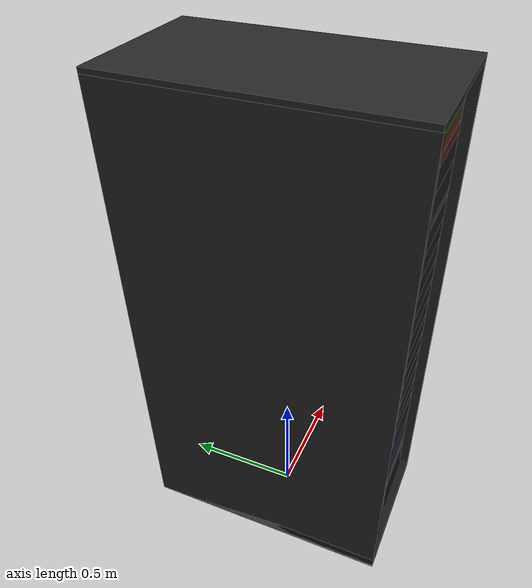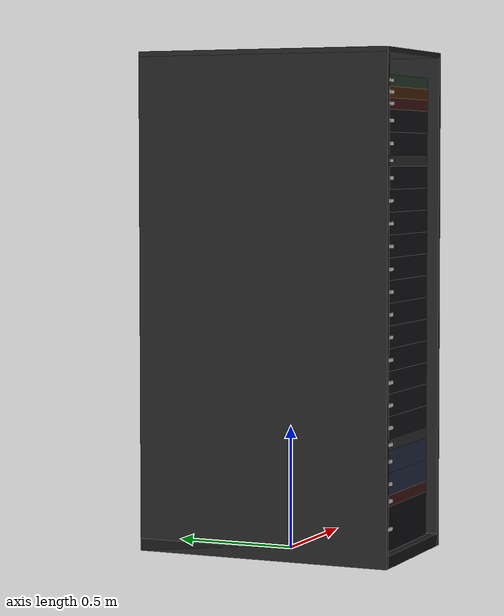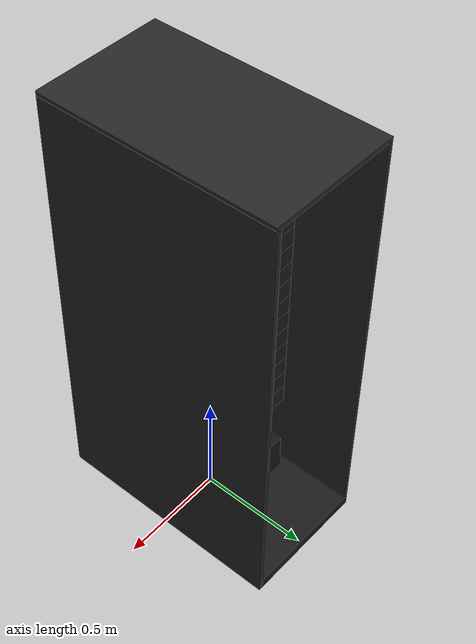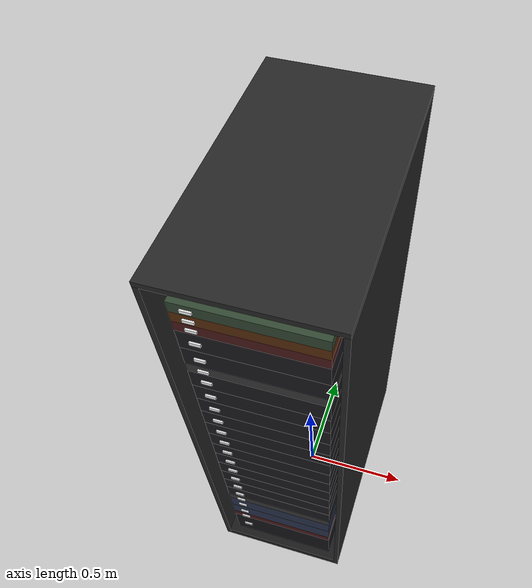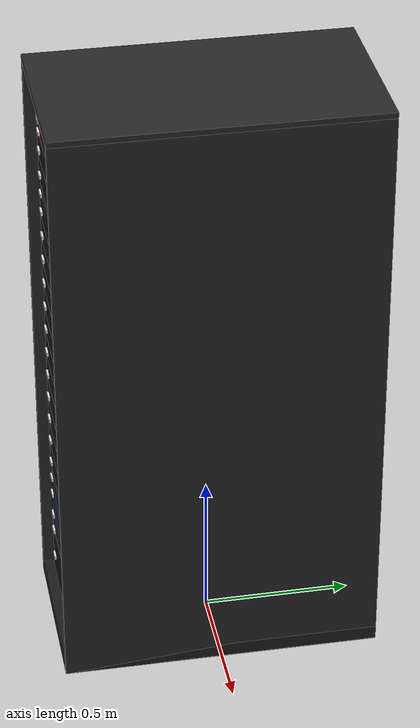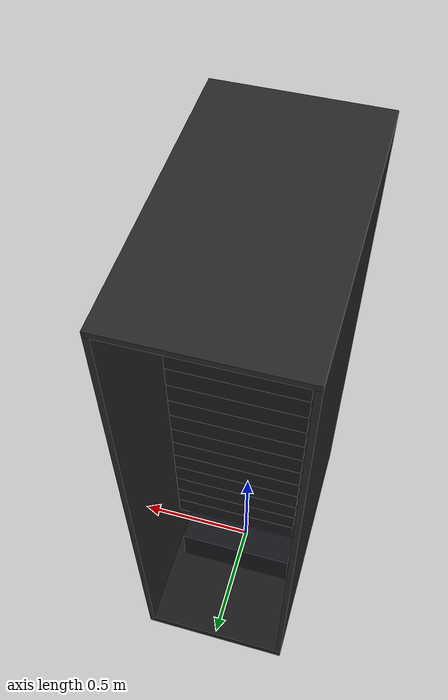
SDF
<?xml version="1.0"?>
<sdf version="1.9">
  <model name="server_rack_6">
    <static>true</static>

    <!-- ===================== FRAME ===================== -->

    <link name="frame_side_left">
      <pose>-0.29 0 1.0 0 0 0</pose>
      <collision name="collision">
        <geometry><box><size>0.02 1.07 2.0</size></box></geometry>
      </collision>
      <visual name="visual">
        <geometry><box><size>0.02 1.07 2.0</size></box></geometry>
        <material>
          <ambient>0.15 0.15 0.15 1</ambient>
          <diffuse>0.15 0.15 0.15 1</diffuse>
        </material>
      </visual>
    </link>

    <link name="frame_side_right">
      <pose>0.29 0 1.0 0 0 0</pose>
      <collision name="collision">
        <geometry><box><size>0.02 1.07 2.0</size></box></geometry>
      </collision>
      <visual name="visual">
        <geometry><box><size>0.02 1.07 2.0</size></box></geometry>
        <material>
          <ambient>0.15 0.15 0.15 1</ambient>
          <diffuse>0.15 0.15 0.15 1</diffuse>
        </material>
      </visual>
    </link>

    <link name="frame_top">
      <pose>0 0 2.01 0 0 0</pose>
      <collision name="collision">
        <geometry><box><size>0.60 1.07 0.02</size></box></geometry>
      </collision>
      <visual name="visual">
        <geometry><box><size>0.60 1.07 0.02</size></box></geometry>
        <material>
          <ambient>0.15 0.15 0.15 1</ambient>
          <diffuse>0.15 0.15 0.15 1</diffuse>
        </material>
      </visual>
    </link>

    <link name="frame_plinth">
      <pose>0 0 0.025 0 0 0</pose>
      <collision name="collision">
        <geometry><box><size>0.60 1.07 0.05</size></box></geometry>
      </collision>
      <visual name="visual">
        <geometry><box><size>0.60 1.07 0.05</size></box></geometry>
        <material>
          <ambient>0.10 0.10 0.10 1</ambient>
          <diffuse>0.10 0.10 0.10 1</diffuse>
        </material>
      </visual>
    </link>

    <!-- ===================== EQUIPMENT ===================== -->

    <!-- 4RU UPS, U1-U4 -->
    <link name="ups">
      <pose>0 -0.15 0.1389 0 0 0</pose>
      <collision name="collision">
        <geometry><box><size>0.483 0.70 0.1778</size></box></geometry>
      </collision>
      <visual name="visual">
        <geometry><box><size>0.483 0.70 0.1778</size></box></geometry>
        <material>
          <ambient>0.08 0.08 0.10 1</ambient>
          <diffuse>0.08 0.08 0.10 1</diffuse>
        </material>
      </visual>
    </link>

    <!-- 1RU PDU A feed, U5 -->
    <link name="pdu_1">
      <pose>0 -0.29 0.2500 0 0 0</pose>
      <collision name="collision">
        <geometry><box><size>0.483 0.42 0.0444</size></box></geometry>
      </collision>
      <visual name="visual">
        <geometry><box><size>0.483 0.42 0.0444</size></box></geometry>
        <material>
          <ambient>0.30 0.10 0.10 1</ambient>
          <diffuse>0.30 0.10 0.10 1</diffuse>
        </material>
      </visual>
    </link>

    <!-- 2RU ToR switch 1, U6-U7 -->
    <link name="switch_1">
      <pose>0 -0.29 0.3167 0 0 0</pose>
      <collision name="collision">
        <geometry><box><size>0.483 0.42 0.0889</size></box></geometry>
      </collision>
      <visual name="visual">
        <geometry><box><size>0.483 0.42 0.0889</size></box></geometry>
        <material>
          <ambient>0.16 0.20 0.30 1</ambient>
          <diffuse>0.16 0.20 0.30 1</diffuse>
        </material>
      </visual>
    </link>

    <!-- 2RU ToR switch 2 (redundant), U8-U9 -->
    <link name="switch_2">
      <pose>0 -0.29 0.4056 0 0 0</pose>
      <collision name="collision">
        <geometry><box><size>0.483 0.42 0.0889</size></box></geometry>
      </collision>
      <visual name="visual">
        <geometry><box><size>0.483 0.42 0.0889</size></box></geometry>
        <material>
          <ambient>0.16 0.20 0.30 1</ambient>
          <diffuse>0.16 0.20 0.30 1</diffuse>
        </material>
      </visual>
    </link>

    <!-- 1RU cable manager 1, U10 -->
    <link name="cable_manager_1">
      <pose>0 -0.425 0.4723 0 0 0</pose>
      <collision name="collision">
        <geometry><box><size>0.483 0.15 0.0444</size></box></geometry>
      </collision>
      <visual name="visual">
        <geometry><box><size>0.483 0.15 0.0444</size></box></geometry>
        <material>
          <ambient>0.22 0.22 0.22 1</ambient>
          <diffuse>0.22 0.22 0.22 1</diffuse>
        </material>
      </visual>
    </link>

    <!-- 2RU server 1, U11-U12 -->
    <link name="server_1">
      <pose>0 -0.15 0.5390 0 0 0</pose>
      <collision name="collision">
        <geometry><box><size>0.483 0.70 0.0889</size></box></geometry>
      </collision>
      <visual name="visual">
        <geometry><box><size>0.483 0.70 0.0889</size></box></geometry>
        <material>
          <ambient>0.10 0.10 0.12 1</ambient>
          <diffuse>0.10 0.10 0.12 1</diffuse>
        </material>
      </visual>
    </link>

    <!-- 2RU server 2, U13-U14 -->
    <link name="server_2">
      <pose>0 -0.15 0.6279 0 0 0</pose>
      <collision name="collision">
        <geometry><box><size>0.483 0.70 0.0889</size></box></geometry>
      </collision>
      <visual name="visual">
        <geometry><box><size>0.483 0.70 0.0889</size></box></geometry>
        <material>
          <ambient>0.10 0.10 0.12 1</ambient>
          <diffuse>0.10 0.10 0.12 1</diffuse>
        </material>
      </visual>
    </link>

    <!-- 2RU server 3, U15-U16 -->
    <link name="server_3">
      <pose>0 -0.15 0.7168 0 0 0</pose>
      <collision name="collision">
        <geometry><box><size>0.483 0.70 0.0889</size></box></geometry>
      </collision>
      <visual name="visual">
        <geometry><box><size>0.483 0.70 0.0889</size></box></geometry>
        <material>
          <ambient>0.10 0.10 0.12 1</ambient>
          <diffuse>0.10 0.10 0.12 1</diffuse>
        </material>
      </visual>
    </link>

    <!-- 2RU server 4, U17-U18 -->
    <link name="server_4">
      <pose>0 -0.15 0.8057 0 0 0</pose>
      <collision name="collision">
        <geometry><box><size>0.483 0.70 0.0889</size></box></geometry>
      </collision>
      <visual name="visual">
        <geometry><box><size>0.483 0.70 0.0889</size></box></geometry>
        <material>
          <ambient>0.10 0.10 0.12 1</ambient>
          <diffuse>0.10 0.10 0.12 1</diffuse>
        </material>
      </visual>
    </link>

    <!-- 2RU server 5, U19-U20 -->
    <link name="server_5">
      <pose>0 -0.15 0.8946 0 0 0</pose>
      <collision name="collision">
        <geometry><box><size>0.483 0.70 0.0889</size></box></geometry>
      </collision>
      <visual name="visual">
        <geometry><box><size>0.483 0.70 0.0889</size></box></geometry>
        <material>
          <ambient>0.10 0.10 0.12 1</ambient>
          <diffuse>0.10 0.10 0.12 1</diffuse>
        </material>
      </visual>
    </link>

    <!-- 2RU server 6, U21-U22 -->
    <link name="server_6">
      <pose>0 -0.15 0.9835 0 0 0</pose>
      <collision name="collision">
        <geometry><box><size>0.483 0.70 0.0889</size></box></geometry>
      </collision>
      <visual name="visual">
        <geometry><box><size>0.483 0.70 0.0889</size></box></geometry>
        <material>
          <ambient>0.10 0.10 0.12 1</ambient>
          <diffuse>0.10 0.10 0.12 1</diffuse>
        </material>
      </visual>
    </link>

    <!-- 2RU server 7, U23-U24 -->
    <link name="server_7">
      <pose>0 -0.15 1.0724 0 0 0</pose>
      <collision name="collision">
        <geometry><box><size>0.483 0.70 0.0889</size></box></geometry>
      </collision>
      <visual name="visual">
        <geometry><box><size>0.483 0.70 0.0889</size></box></geometry>
        <material>
          <ambient>0.10 0.10 0.12 1</ambient>
          <diffuse>0.10 0.10 0.12 1</diffuse>
        </material>
      </visual>
    </link>

    <!-- 2RU server 8, U25-U26 -->
    <link name="server_8">
      <pose>0 -0.15 1.1613 0 0 0</pose>
      <collision name="collision">
        <geometry><box><size>0.483 0.70 0.0889</size></box></geometry>
      </collision>
      <visual name="visual">
        <geometry><box><size>0.483 0.70 0.0889</size></box></geometry>
        <material>
          <ambient>0.10 0.10 0.12 1</ambient>
          <diffuse>0.10 0.10 0.12 1</diffuse>
        </material>
      </visual>
    </link>

    <!-- 2RU server 9, U27-U28 -->
    <link name="server_9">
      <pose>0 -0.15 1.2502 0 0 0</pose>
      <collision name="collision">
        <geometry><box><size>0.483 0.70 0.0889</size></box></geometry>
      </collision>
      <visual name="visual">
        <geometry><box><size>0.483 0.70 0.0889</size></box></geometry>
        <material>
          <ambient>0.10 0.10 0.12 1</ambient>
          <diffuse>0.10 0.10 0.12 1</diffuse>
        </material>
      </visual>
    </link>

    <!-- 2RU server 10, U29-U30 -->
    <link name="server_10">
      <pose>0 -0.15 1.3391 0 0 0</pose>
      <collision name="collision">
        <geometry><box><size>0.483 0.70 0.0889</size></box></geometry>
      </collision>
      <visual name="visual">
        <geometry><box><size>0.483 0.70 0.0889</size></box></geometry>
        <material>
          <ambient>0.10 0.10 0.12 1</ambient>
          <diffuse>0.10 0.10 0.12 1</diffuse>
        </material>
      </visual>
    </link>

    <!-- 2RU server 11, U31-U32 -->
    <link name="server_11">
      <pose>0 -0.15 1.4280 0 0 0</pose>
      <collision name="collision">
        <geometry><box><size>0.483 0.70 0.0889</size></box></geometry>
      </collision>
      <visual name="visual">
        <geometry><box><size>0.483 0.70 0.0889</size></box></geometry>
        <material>
          <ambient>0.10 0.10 0.12 1</ambient>
          <diffuse>0.10 0.10 0.12 1</diffuse>
        </material>
      </visual>
    </link>

    <!-- 2RU server 12, U33-U34 -->
    <link name="server_12">
      <pose>0 -0.15 1.5169 0 0 0</pose>
      <collision name="collision">
        <geometry><box><size>0.483 0.70 0.0889</size></box></geometry>
      </collision>
      <visual name="visual">
        <geometry><box><size>0.483 0.70 0.0889</size></box></geometry>
        <material>
          <ambient>0.10 0.10 0.12 1</ambient>
          <diffuse>0.10 0.10 0.12 1</diffuse>
        </material>
      </visual>
    </link>

    <!-- 1RU cable manager 2, U35 -->
    <link name="cable_manager_2">
      <pose>0 -0.425 1.5835 0 0 0</pose>
      <collision name="collision">
        <geometry><box><size>0.483 0.15 0.0444</size></box></geometry>
      </collision>
      <visual name="visual">
        <geometry><box><size>0.483 0.15 0.0444</size></box></geometry>
        <material>
          <ambient>0.22 0.22 0.22 1</ambient>
          <diffuse>0.22 0.22 0.22 1</diffuse>
        </material>
      </visual>
    </link>

    <!-- 2RU server 13, U36-U37 -->
    <link name="server_13">
      <pose>0 -0.15 1.6502 0 0 0</pose>
      <collision name="collision">
        <geometry><box><size>0.483 0.70 0.0889</size></box></geometry>
      </collision>
      <visual name="visual">
        <geometry><box><size>0.483 0.70 0.0889</size></box></geometry>
        <material>
          <ambient>0.10 0.10 0.12 1</ambient>
          <diffuse>0.10 0.10 0.12 1</diffuse>
        </material>
      </visual>
    </link>

    <!-- 2RU server 14, U38-U39 -->
    <link name="server_14">
      <pose>0 -0.15 1.7391 0 0 0</pose>
      <collision name="collision">
        <geometry><box><size>0.483 0.70 0.0889</size></box></geometry>
      </collision>
      <visual name="visual">
        <geometry><box><size>0.483 0.70 0.0889</size></box></geometry>
        <material>
          <ambient>0.10 0.10 0.12 1</ambient>
          <diffuse>0.10 0.10 0.12 1</diffuse>
        </material>
      </visual>
    </link>

    <!-- 1RU PDU B feed, U40 -->
    <link name="pdu_2">
      <pose>0 -0.29 1.8058 0 0 0</pose>
      <collision name="collision">
        <geometry><box><size>0.483 0.42 0.0444</size></box></geometry>
      </collision>
      <visual name="visual">
        <geometry><box><size>0.483 0.42 0.0444</size></box></geometry>
        <material>
          <ambient>0.30 0.10 0.10 1</ambient>
          <diffuse>0.30 0.10 0.10 1</diffuse>
        </material>
      </visual>
    </link>

    <!-- 1RU firewall, U41 -->
    <link name="firewall">
      <pose>0 -0.29 1.8502 0 0 0</pose>
      <collision name="collision">
        <geometry><box><size>0.483 0.42 0.0444</size></box></geometry>
      </collision>
      <visual name="visual">
        <geometry><box><size>0.483 0.42 0.0444</size></box></geometry>
        <material>
          <ambient>0.35 0.18 0.05 1</ambient>
          <diffuse>0.35 0.18 0.05 1</diffuse>
        </material>
      </visual>
    </link>

    <!-- 1RU console server, U42 -->
    <link name="console_server">
      <pose>0 -0.35 1.8947 0 0 0</pose>
      <collision name="collision">
        <geometry><box><size>0.483 0.30 0.0444</size></box></geometry>
      </collision>
      <visual name="visual">
        <geometry><box><size>0.483 0.30 0.0444</size></box></geometry>
        <material>
          <ambient>0.20 0.28 0.20 1</ambient>
          <diffuse>0.20 0.28 0.20 1</diffuse>
        </material>
      </visual>
    </link>

    <!-- ===================== RFID TAGS ===================== -->

    <!-- ups, U1-4 -->
    <model name="barcode_label_031FB5B">
      <static>true</static>
      <pose>-0.18 -0.5042 0.1389 0 0 0</pose>
      <link name="label_link">
        <visual name="substrate">
          <geometry><box><size>0.03810 0.00635 0.01270</size></box></geometry>
          <material>
            <ambient>0.9 0.9 0.9 1</ambient>
            <diffuse>0.9 0.9 0.9 1</diffuse>
          </material>
        </visual>
        <visual name="print">
          <pose>0 -0.00327 0 1.5708 0 0</pose>
          <geometry><box><size>0.03810 0.01270 0.0002</size></box></geometry>
          <material>
            <ambient>1 1 1 1</ambient>
            <diffuse>1 1 1 1</diffuse>
            <pbr><metal>
              <albedo_map>model://barcode_labels/materials/textures/031FB5B.png</albedo_map>
              <metalness>0.0</metalness>
              <roughness>1.0</roughness>
            </metal></pbr>
          </material>
        </visual>
      </link>
    </model>

    <!-- pdu, U5-5 -->
    <model name="barcode_label_031FB5C">
      <static>true</static>
      <pose>-0.18 -0.5042 0.2500 0 0 0</pose>
      <link name="label_link">
        <visual name="substrate">
          <geometry><box><size>0.03810 0.00635 0.01270</size></box></geometry>
          <material>
            <ambient>0.9 0.9 0.9 1</ambient>
            <diffuse>0.9 0.9 0.9 1</diffuse>
          </material>
        </visual>
        <visual name="print">
          <pose>0 -0.00327 0 1.5708 0 0</pose>
          <geometry><box><size>0.03810 0.01270 0.0002</size></box></geometry>
          <material>
            <ambient>1 1 1 1</ambient>
            <diffuse>1 1 1 1</diffuse>
            <pbr><metal>
              <albedo_map>model://barcode_labels/materials/textures/031FB5C.png</albedo_map>
              <metalness>0.0</metalness>
              <roughness>1.0</roughness>
            </metal></pbr>
          </material>
        </visual>
      </link>
    </model>

    <!-- switch, U6-7 -->
    <model name="barcode_label_031FB5D">
      <static>true</static>
      <pose>-0.18 -0.5042 0.3167 0 0 0</pose>
      <link name="label_link">
        <visual name="substrate">
          <geometry><box><size>0.03810 0.00635 0.01270</size></box></geometry>
          <material>
            <ambient>0.9 0.9 0.9 1</ambient>
            <diffuse>0.9 0.9 0.9 1</diffuse>
          </material>
        </visual>
        <visual name="print">
          <pose>0 -0.00327 0 1.5708 0 0</pose>
          <geometry><box><size>0.03810 0.01270 0.0002</size></box></geometry>
          <material>
            <ambient>1 1 1 1</ambient>
            <diffuse>1 1 1 1</diffuse>
            <pbr><metal>
              <albedo_map>model://barcode_labels/materials/textures/031FB5D.png</albedo_map>
              <metalness>0.0</metalness>
              <roughness>1.0</roughness>
            </metal></pbr>
          </material>
        </visual>
      </link>
    </model>

    <!-- switch, U8-9 -->
    <model name="barcode_label_031FB5E">
      <static>true</static>
      <pose>-0.18 -0.5042 0.4056 0 0 0</pose>
      <link name="label_link">
        <visual name="substrate">
          <geometry><box><size>0.03810 0.00635 0.01270</size></box></geometry>
          <material>
            <ambient>0.9 0.9 0.9 1</ambient>
            <diffuse>0.9 0.9 0.9 1</diffuse>
          </material>
        </visual>
        <visual name="print">
          <pose>0 -0.00327 0 1.5708 0 0</pose>
          <geometry><box><size>0.03810 0.01270 0.0002</size></box></geometry>
          <material>
            <ambient>1 1 1 1</ambient>
            <diffuse>1 1 1 1</diffuse>
            <pbr><metal>
              <albedo_map>model://barcode_labels/materials/textures/031FB5E.png</albedo_map>
              <metalness>0.0</metalness>
              <roughness>1.0</roughness>
            </metal></pbr>
          </material>
        </visual>
      </link>
    </model>

    <!-- cable_manager, U10-10 -->
    <model name="barcode_label_031FB5F">
      <static>true</static>
      <pose>-0.18 -0.5042 0.4723 0 0 0</pose>
      <link name="label_link">
        <visual name="substrate">
          <geometry><box><size>0.03810 0.00635 0.01270</size></box></geometry>
          <material>
            <ambient>0.9 0.9 0.9 1</ambient>
            <diffuse>0.9 0.9 0.9 1</diffuse>
          </material>
        </visual>
        <visual name="print">
          <pose>0 -0.00327 0 1.5708 0 0</pose>
          <geometry><box><size>0.03810 0.01270 0.0002</size></box></geometry>
          <material>
            <ambient>1 1 1 1</ambient>
            <diffuse>1 1 1 1</diffuse>
            <pbr><metal>
              <albedo_map>model://barcode_labels/materials/textures/031FB5F.png</albedo_map>
              <metalness>0.0</metalness>
              <roughness>1.0</roughness>
            </metal></pbr>
          </material>
        </visual>
      </link>
    </model>

    <!-- server, U11-12 -->
    <model name="barcode_label_031FB60">
      <static>true</static>
      <pose>-0.18 -0.5042 0.5390 0 0 0</pose>
      <link name="label_link">
        <visual name="substrate">
          <geometry><box><size>0.03810 0.00635 0.01270</size></box></geometry>
          <material>
            <ambient>0.9 0.9 0.9 1</ambient>
            <diffuse>0.9 0.9 0.9 1</diffuse>
          </material>
        </visual>
        <visual name="print">
          <pose>0 -0.00327 0 1.5708 0 0</pose>
          <geometry><box><size>0.03810 0.01270 0.0002</size></box></geometry>
          <material>
            <ambient>1 1 1 1</ambient>
            <diffuse>1 1 1 1</diffuse>
            <pbr><metal>
              <albedo_map>model://barcode_labels/materials/textures/031FB60.png</albedo_map>
              <metalness>0.0</metalness>
              <roughness>1.0</roughness>
            </metal></pbr>
          </material>
        </visual>
      </link>
    </model>

    <!-- server, U13-14 -->
    <model name="barcode_label_031FB61">
      <static>true</static>
      <pose>-0.18 -0.5042 0.6279 0 0 0</pose>
      <link name="label_link">
        <visual name="substrate">
          <geometry><box><size>0.03810 0.00635 0.01270</size></box></geometry>
          <material>
            <ambient>0.9 0.9 0.9 1</ambient>
            <diffuse>0.9 0.9 0.9 1</diffuse>
          </material>
        </visual>
        <visual name="print">
          <pose>0 -0.00327 0 1.5708 0 0</pose>
          <geometry><box><size>0.03810 0.01270 0.0002</size></box></geometry>
          <material>
            <ambient>1 1 1 1</ambient>
            <diffuse>1 1 1 1</diffuse>
            <pbr><metal>
              <albedo_map>model://barcode_labels/materials/textures/031FB61.png</albedo_map>
              <metalness>0.0</metalness>
              <roughness>1.0</roughness>
            </metal></pbr>
          </material>
        </visual>
      </link>
    </model>

    <!-- server, U15-16 -->
    <model name="barcode_label_031FB62">
      <static>true</static>
      <pose>-0.18 -0.5042 0.7168 0 0 0</pose>
      <link name="label_link">
        <visual name="substrate">
          <geometry><box><size>0.03810 0.00635 0.01270</size></box></geometry>
          <material>
            <ambient>0.9 0.9 0.9 1</ambient>
            <diffuse>0.9 0.9 0.9 1</diffuse>
          </material>
        </visual>
        <visual name="print">
          <pose>0 -0.00327 0 1.5708 0 0</pose>
          <geometry><box><size>0.03810 0.01270 0.0002</size></box></geometry>
          <material>
            <ambient>1 1 1 1</ambient>
            <diffuse>1 1 1 1</diffuse>
            <pbr><metal>
              <albedo_map>model://barcode_labels/materials/textures/031FB62.png</albedo_map>
              <metalness>0.0</metalness>
              <roughness>1.0</roughness>
            </metal></pbr>
          </material>
        </visual>
      </link>
    </model>

    <!-- server, U17-18 -->
    <model name="barcode_label_031FB63">
      <static>true</static>
      <pose>-0.18 -0.5042 0.8057 0 0 0</pose>
      <link name="label_link">
        <visual name="substrate">
          <geometry><box><size>0.03810 0.00635 0.01270</size></box></geometry>
          <material>
            <ambient>0.9 0.9 0.9 1</ambient>
            <diffuse>0.9 0.9 0.9 1</diffuse>
          </material>
        </visual>
        <visual name="print">
          <pose>0 -0.00327 0 1.5708 0 0</pose>
          <geometry><box><size>0.03810 0.01270 0.0002</size></box></geometry>
          <material>
            <ambient>1 1 1 1</ambient>
            <diffuse>1 1 1 1</diffuse>
            <pbr><metal>
              <albedo_map>model://barcode_labels/materials/textures/031FB63.png</albedo_map>
              <metalness>0.0</metalness>
              <roughness>1.0</roughness>
            </metal></pbr>
          </material>
        </visual>
      </link>
    </model>

    <!-- server, U19-20 -->
    <model name="barcode_label_031FB64">
      <static>true</static>
      <pose>-0.18 -0.5042 0.8946 0 0 0</pose>
      <link name="label_link">
        <visual name="substrate">
          <geometry><box><size>0.03810 0.00635 0.01270</size></box></geometry>
          <material>
            <ambient>0.9 0.9 0.9 1</ambient>
            <diffuse>0.9 0.9 0.9 1</diffuse>
          </material>
        </visual>
        <visual name="print">
          <pose>0 -0.00327 0 1.5708 0 0</pose>
          <geometry><box><size>0.03810 0.01270 0.0002</size></box></geometry>
          <material>
            <ambient>1 1 1 1</ambient>
            <diffuse>1 1 1 1</diffuse>
            <pbr><metal>
              <albedo_map>model://barcode_labels/materials/textures/031FB64.png</albedo_map>
              <metalness>0.0</metalness>
              <roughness>1.0</roughness>
            </metal></pbr>
          </material>
        </visual>
      </link>
    </model>

    <!-- server, U21-22 -->
    <model name="barcode_label_031FB65">
      <static>true</static>
      <pose>-0.18 -0.5042 0.9835 0 0 0</pose>
      <link name="label_link">
        <visual name="substrate">
          <geometry><box><size>0.03810 0.00635 0.01270</size></box></geometry>
          <material>
            <ambient>0.9 0.9 0.9 1</ambient>
            <diffuse>0.9 0.9 0.9 1</diffuse>
          </material>
        </visual>
        <visual name="print">
          <pose>0 -0.00327 0 1.5708 0 0</pose>
          <geometry><box><size>0.03810 0.01270 0.0002</size></box></geometry>
          <material>
            <ambient>1 1 1 1</ambient>
            <diffuse>1 1 1 1</diffuse>
            <pbr><metal>
              <albedo_map>model://barcode_labels/materials/textures/031FB65.png</albedo_map>
              <metalness>0.0</metalness>
              <roughness>1.0</roughness>
            </metal></pbr>
          </material>
        </visual>
      </link>
    </model>

    <!-- server, U23-24 -->
    <model name="barcode_label_031FB66">
      <static>true</static>
      <pose>-0.18 -0.5042 1.0724 0 0 0</pose>
      <link name="label_link">
        <visual name="substrate">
          <geometry><box><size>0.03810 0.00635 0.01270</size></box></geometry>
          <material>
            <ambient>0.9 0.9 0.9 1</ambient>
            <diffuse>0.9 0.9 0.9 1</diffuse>
          </material>
        </visual>
        <visual name="print">
          <pose>0 -0.00327 0 1.5708 0 0</pose>
          <geometry><box><size>0.03810 0.01270 0.0002</size></box></geometry>
          <material>
            <ambient>1 1 1 1</ambient>
            <diffuse>1 1 1 1</diffuse>
            <pbr><metal>
              <albedo_map>model://barcode_labels/materials/textures/031FB66.png</albedo_map>
              <metalness>0.0</metalness>
              <roughness>1.0</roughness>
            </metal></pbr>
          </material>
        </visual>
      </link>
    </model>

    <!-- server, U25-26 -->
    <model name="barcode_label_031FB67">
      <static>true</static>
      <pose>-0.18 -0.5042 1.1613 0 0 0</pose>
      <link name="label_link">
        <visual name="substrate">
          <geometry><box><size>0.03810 0.00635 0.01270</size></box></geometry>
          <material>
            <ambient>0.9 0.9 0.9 1</ambient>
            <diffuse>0.9 0.9 0.9 1</diffuse>
          </material>
        </visual>
        <visual name="print">
          <pose>0 -0.00327 0 1.5708 0 0</pose>
          <geometry><box><size>0.03810 0.01270 0.0002</size></box></geometry>
          <material>
            <ambient>1 1 1 1</ambient>
            <diffuse>1 1 1 1</diffuse>
            <pbr><metal>
              <albedo_map>model://barcode_labels/materials/textures/031FB67.png</albedo_map>
              <metalness>0.0</metalness>
              <roughness>1.0</roughness>
            </metal></pbr>
          </material>
        </visual>
      </link>
    </model>

    <!-- server, U27-28 -->
    <model name="barcode_label_031FB68">
      <static>true</static>
      <pose>-0.18 -0.5042 1.2502 0 0 0</pose>
      <link name="label_link">
        <visual name="substrate">
          <geometry><box><size>0.03810 0.00635 0.01270</size></box></geometry>
          <material>
            <ambient>0.9 0.9 0.9 1</ambient>
            <diffuse>0.9 0.9 0.9 1</diffuse>
          </material>
        </visual>
        <visual name="print">
          <pose>0 -0.00327 0 1.5708 0 0</pose>
          <geometry><box><size>0.03810 0.01270 0.0002</size></box></geometry>
          <material>
            <ambient>1 1 1 1</ambient>
            <diffuse>1 1 1 1</diffuse>
            <pbr><metal>
              <albedo_map>model://barcode_labels/materials/textures/031FB68.png</albedo_map>
              <metalness>0.0</metalness>
              <roughness>1.0</roughness>
            </metal></pbr>
          </material>
        </visual>
      </link>
    </model>

    <!-- server, U29-30 -->
    <model name="barcode_label_031FB69">
      <static>true</static>
      <pose>-0.18 -0.5042 1.3391 0 0 0</pose>
      <link name="label_link">
        <visual name="substrate">
          <geometry><box><size>0.03810 0.00635 0.01270</size></box></geometry>
          <material>
            <ambient>0.9 0.9 0.9 1</ambient>
            <diffuse>0.9 0.9 0.9 1</diffuse>
          </material>
        </visual>
        <visual name="print">
          <pose>0 -0.00327 0 1.5708 0 0</pose>
          <geometry><box><size>0.03810 0.01270 0.0002</size></box></geometry>
          <material>
            <ambient>1 1 1 1</ambient>
            <diffuse>1 1 1 1</diffuse>
            <pbr><metal>
              <albedo_map>model://barcode_labels/materials/textures/031FB69.png</albedo_map>
              <metalness>0.0</metalness>
              <roughness>1.0</roughness>
            </metal></pbr>
          </material>
        </visual>
      </link>
    </model>

    <!-- server, U31-32 -->
    <model name="barcode_label_031FB6A">
      <static>true</static>
      <pose>-0.18 -0.5042 1.4280 0 0 0</pose>
      <link name="label_link">
        <visual name="substrate">
          <geometry><box><size>0.03810 0.00635 0.01270</size></box></geometry>
          <material>
            <ambient>0.9 0.9 0.9 1</ambient>
            <diffuse>0.9 0.9 0.9 1</diffuse>
          </material>
        </visual>
        <visual name="print">
          <pose>0 -0.00327 0 1.5708 0 0</pose>
          <geometry><box><size>0.03810 0.01270 0.0002</size></box></geometry>
          <material>
            <ambient>1 1 1 1</ambient>
            <diffuse>1 1 1 1</diffuse>
            <pbr><metal>
              <albedo_map>model://barcode_labels/materials/textures/031FB6A.png</albedo_map>
              <metalness>0.0</metalness>
              <roughness>1.0</roughness>
            </metal></pbr>
          </material>
        </visual>
      </link>
    </model>

    <!-- server, U33-34 -->
    <model name="barcode_label_031FB6B">
      <static>true</static>
      <pose>-0.18 -0.5042 1.5169 0 0 0</pose>
      <link name="label_link">
        <visual name="substrate">
          <geometry><box><size>0.03810 0.00635 0.01270</size></box></geometry>
          <material>
            <ambient>0.9 0.9 0.9 1</ambient>
            <diffuse>0.9 0.9 0.9 1</diffuse>
          </material>
        </visual>
        <visual name="print">
          <pose>0 -0.00327 0 1.5708 0 0</pose>
          <geometry><box><size>0.03810 0.01270 0.0002</size></box></geometry>
          <material>
            <ambient>1 1 1 1</ambient>
            <diffuse>1 1 1 1</diffuse>
            <pbr><metal>
              <albedo_map>model://barcode_labels/materials/textures/031FB6B.png</albedo_map>
              <metalness>0.0</metalness>
              <roughness>1.0</roughness>
            </metal></pbr>
          </material>
        </visual>
      </link>
    </model>

    <!-- cable_manager, U35-35 -->
    <model name="barcode_label_031FB6C">
      <static>true</static>
      <pose>-0.18 -0.5042 1.5835 0 0 0</pose>
      <link name="label_link">
        <visual name="substrate">
          <geometry><box><size>0.03810 0.00635 0.01270</size></box></geometry>
          <material>
            <ambient>0.9 0.9 0.9 1</ambient>
            <diffuse>0.9 0.9 0.9 1</diffuse>
          </material>
        </visual>
        <visual name="print">
          <pose>0 -0.00327 0 1.5708 0 0</pose>
          <geometry><box><size>0.03810 0.01270 0.0002</size></box></geometry>
          <material>
            <ambient>1 1 1 1</ambient>
            <diffuse>1 1 1 1</diffuse>
            <pbr><metal>
              <albedo_map>model://barcode_labels/materials/textures/031FB6C.png</albedo_map>
              <metalness>0.0</metalness>
              <roughness>1.0</roughness>
            </metal></pbr>
          </material>
        </visual>
      </link>
    </model>

    <!-- server, U36-37 -->
    <model name="barcode_label_031FB6D">
      <static>true</static>
      <pose>-0.18 -0.5042 1.6502 0 0 0</pose>
      <link name="label_link">
        <visual name="substrate">
          <geometry><box><size>0.03810 0.00635 0.01270</size></box></geometry>
          <material>
            <ambient>0.9 0.9 0.9 1</ambient>
            <diffuse>0.9 0.9 0.9 1</diffuse>
          </material>
        </visual>
        <visual name="print">
          <pose>0 -0.00327 0 1.5708 0 0</pose>
          <geometry><box><size>0.03810 0.01270 0.0002</size></box></geometry>
          <material>
            <ambient>1 1 1 1</ambient>
            <diffuse>1 1 1 1</diffuse>
            <pbr><metal>
              <albedo_map>model://barcode_labels/materials/textures/031FB6D.png</albedo_map>
              <metalness>0.0</metalness>
              <roughness>1.0</roughness>
            </metal></pbr>
          </material>
        </visual>
      </link>
    </model>

    <!-- server, U38-39 -->
    <model name="barcode_label_031FB6E">
      <static>true</static>
      <pose>-0.18 -0.5042 1.7391 0 0 0</pose>
      <link name="label_link">
        <visual name="substrate">
          <geometry><box><size>0.03810 0.00635 0.01270</size></box></geometry>
          <material>
            <ambient>0.9 0.9 0.9 1</ambient>
            <diffuse>0.9 0.9 0.9 1</diffuse>
          </material>
        </visual>
        <visual name="print">
          <pose>0 -0.00327 0 1.5708 0 0</pose>
          <geometry><box><size>0.03810 0.01270 0.0002</size></box></geometry>
          <material>
            <ambient>1 1 1 1</ambient>
            <diffuse>1 1 1 1</diffuse>
            <pbr><metal>
              <albedo_map>model://barcode_labels/materials/textures/031FB6E.png</albedo_map>
              <metalness>0.0</metalness>
              <roughness>1.0</roughness>
            </metal></pbr>
          </material>
        </visual>
      </link>
    </model>

    <!-- pdu, U40-40 -->
    <model name="barcode_label_031FB6F">
      <static>true</static>
      <pose>-0.18 -0.5042 1.8058 0 0 0</pose>
      <link name="label_link">
        <visual name="substrate">
          <geometry><box><size>0.03810 0.00635 0.01270</size></box></geometry>
          <material>
            <ambient>0.9 0.9 0.9 1</ambient>
            <diffuse>0.9 0.9 0.9 1</diffuse>
          </material>
        </visual>
        <visual name="print">
          <pose>0 -0.00327 0 1.5708 0 0</pose>
          <geometry><box><size>0.03810 0.01270 0.0002</size></box></geometry>
          <material>
            <ambient>1 1 1 1</ambient>
            <diffuse>1 1 1 1</diffuse>
            <pbr><metal>
              <albedo_map>model://barcode_labels/materials/textures/031FB6F.png</albedo_map>
              <metalness>0.0</metalness>
              <roughness>1.0</roughness>
            </metal></pbr>
          </material>
        </visual>
      </link>
    </model>

    <!-- firewall, U41-41 -->
    <model name="barcode_label_031FB70">
      <static>true</static>
      <pose>-0.18 -0.5042 1.8502 0 0 0</pose>
      <link name="label_link">
        <visual name="substrate">
          <geometry><box><size>0.03810 0.00635 0.01270</size></box></geometry>
          <material>
            <ambient>0.9 0.9 0.9 1</ambient>
            <diffuse>0.9 0.9 0.9 1</diffuse>
          </material>
        </visual>
        <visual name="print">
          <pose>0 -0.00327 0 1.5708 0 0</pose>
          <geometry><box><size>0.03810 0.01270 0.0002</size></box></geometry>
          <material>
            <ambient>1 1 1 1</ambient>
            <diffuse>1 1 1 1</diffuse>
            <pbr><metal>
              <albedo_map>model://barcode_labels/materials/textures/031FB70.png</albedo_map>
              <metalness>0.0</metalness>
              <roughness>1.0</roughness>
            </metal></pbr>
          </material>
        </visual>
      </link>
    </model>

    <!-- console_server, U42-42 -->
    <model name="barcode_label_031FB71">
      <static>true</static>
      <pose>-0.18 -0.5042 1.8947 0 0 0</pose>
      <link name="label_link">
        <visual name="substrate">
          <geometry><box><size>0.03810 0.00635 0.01270</size></box></geometry>
          <material>
            <ambient>0.9 0.9 0.9 1</ambient>
            <diffuse>0.9 0.9 0.9 1</diffuse>
          </material>
        </visual>
        <visual name="print">
          <pose>0 -0.00327 0 1.5708 0 0</pose>
          <geometry><box><size>0.03810 0.01270 0.0002</size></box></geometry>
          <material>
            <ambient>1 1 1 1</ambient>
            <diffuse>1 1 1 1</diffuse>
            <pbr><metal>
              <albedo_map>model://barcode_labels/materials/textures/031FB71.png</albedo_map>
              <metalness>0.0</metalness>
              <roughness>1.0</roughness>
            </metal></pbr>
          </material>
        </visual>
      </link>
    </model>

  </model>
</sdf>
